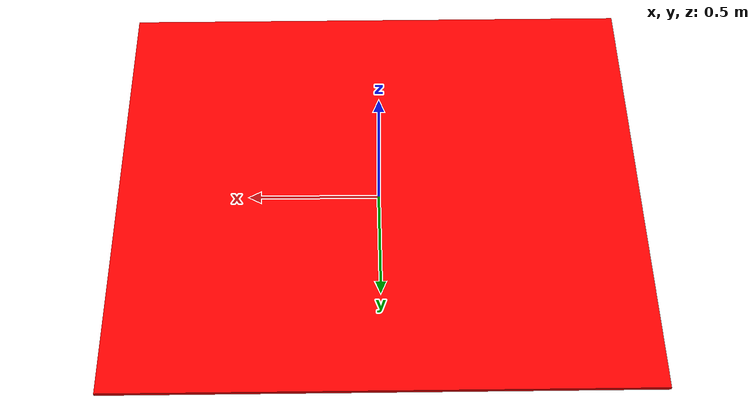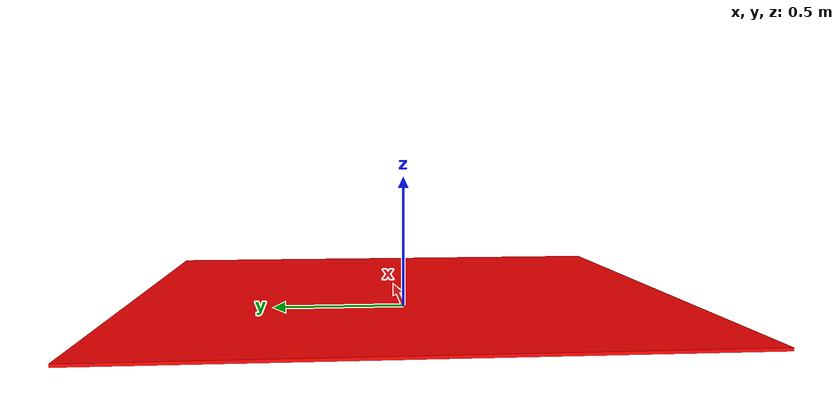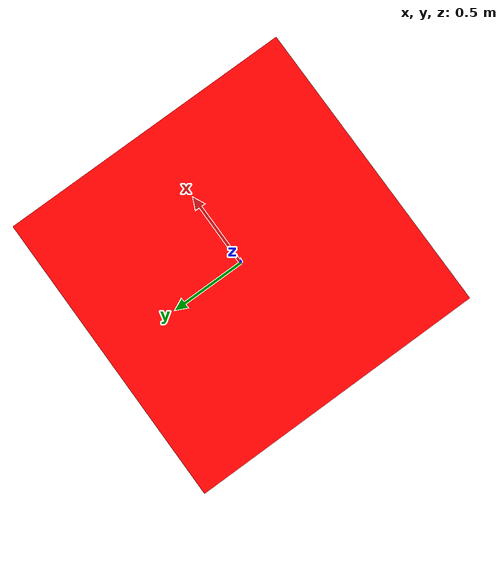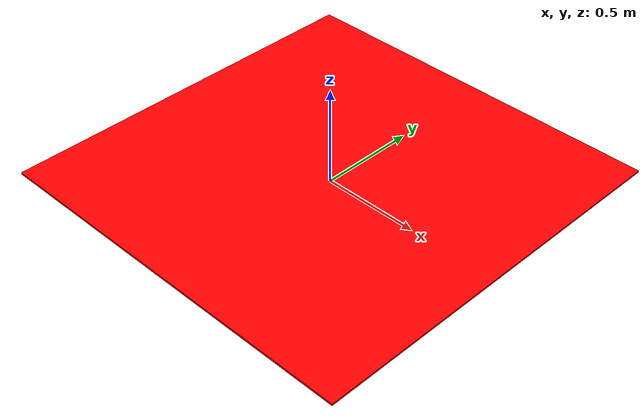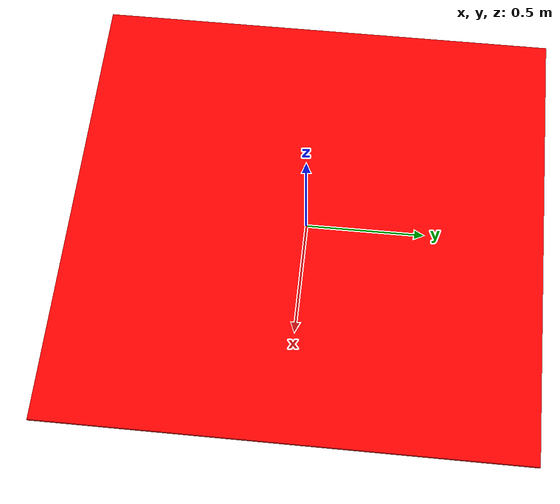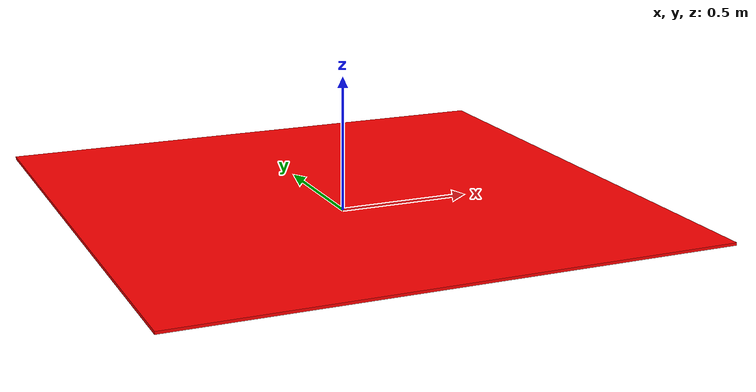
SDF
<?xml version="1.0" ?>
<sdf version="1.6">
  <model name="marker">
    <link name="link">
      <inertial>
        <mass>1.0</mass>
        <inertia>
          <ixx>0.1</ixx>
          <ixy>0.0</ixy>
          <ixz>0.0</ixz>
          <iyy>0.1</iyy>
          <iyz>0.0</iyz>
          <izz>0.1</izz>
        </inertia>
      </inertial>
      <collision name="collision">
        <geometry>
          <box>
            <size>1.0 1.0 0.1</size>
          </box>
        </geometry>
        <surface>
          <contact>
            <ode/>
          </contact>
          <bounce/>
          <friction>
            <ode/>
          </friction>
        </surface>
        <pose>0 0 0.05 0 0 0</pose>
      </collision>
      <visual name="visual">
        <geometry>
          <box>
            <size>2.0 2.0 0.01</size>
          </box>
        </geometry>
        <material>
          <ambient>1 0 0 1</ambient>  <!-- Red color -->
        </material>
      </visual>
      <pose>0 0 0.05 0 0 0</pose>
    </link>
  </model>
</sdf>
